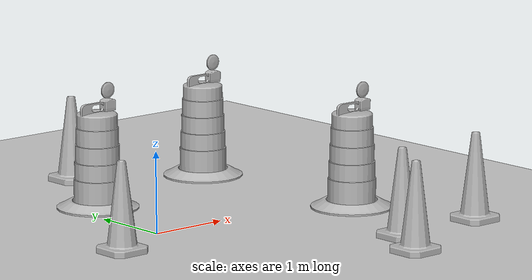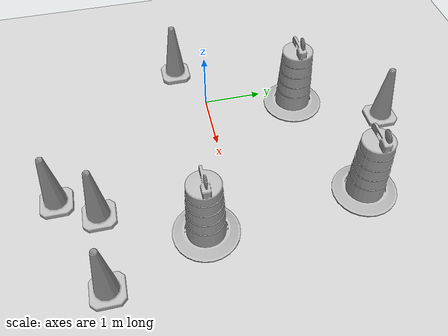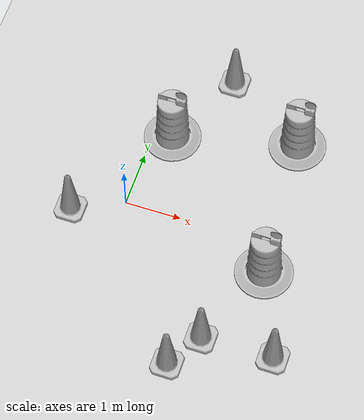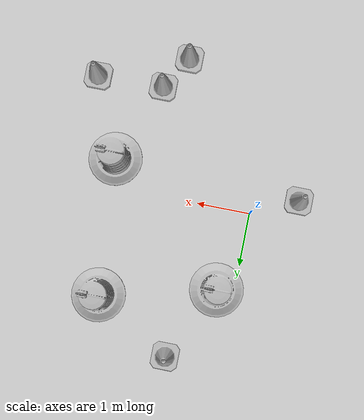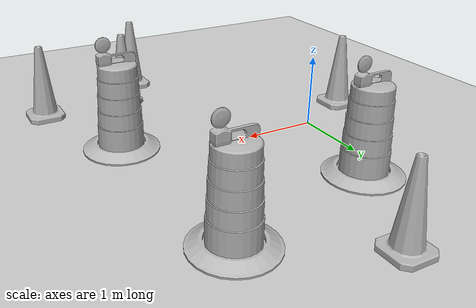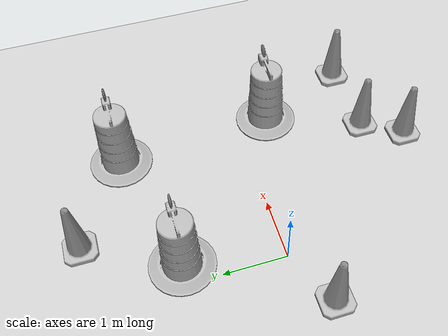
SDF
<sdf version="1.7">
 <world name="default">
  <model name="ground_plane">
   <static>1</static>
   <link name="link">
    <collision name="collision">
     <geometry><plane><normal>0 0 1</normal><size>100 100</size></plane></geometry>
     <surface><friction><ode><mu>100</mu><mu2>50</mu2></ode></friction></surface>
    </collision>
    <visual name="visual">
     <cast_shadows>0</cast_shadows>
     <geometry><plane><normal>0 0 1</normal><size>100 100</size></plane></geometry>
     <material>
      <script><uri>file://media/materials/scripts/gazebo.material</uri><name>Gazebo/Grey</name></script>
     </material>
    </visual>
   </link>
  </model>
  <gravity>0 0 -9.8</gravity>
  <magnetic_field>6e-06 2.3e-05 -4.2e-05</magnetic_field>
  <atmosphere type="adiabatic"/>
  <physics type="ode">
   <max_step_size>0.001</max_step_size>
   <real_time_factor>1</real_time_factor>
   <real_time_update_rate>1000</real_time_update_rate>
  </physics>
  <scene><ambient>0.4 0.4 0.4 1</ambient><background>0.7 0.7 0.7 1</background><shadows>1</shadows></scene>
  <audio><device>default</device></audio>
  <spherical_coordinates>
   <surface_model>EARTH_WGS84</surface_model>
   <latitude_deg>0</latitude_deg>
   <longitude_deg>0</longitude_deg>
   <elevation>0</elevation>
   <heading_deg>0</heading_deg>
  </spherical_coordinates>
  <model name="Construction Cone">
   <link name="link">
    <collision name="collision">
     <geometry>
      <mesh><scale>10 10 10</scale><uri>model://construction_cone/meshes/construction_cone.dae</uri></mesh>
     </geometry>
    </collision>
    <visual name="visual">
     <geometry>
      <mesh><scale>10 10 10</scale><uri>model://construction_cone/meshes/construction_cone.dae</uri></mesh>
     </geometry>
    </visual>
    <inertial>
     <inertia><ixx>1</ixx><ixy>0</ixy><ixz>0</ixz><iyy>1</iyy><iyz>0</iyz><izz>1</izz></inertia>
     <mass>1</mass>
    </inertial>
   </link>
   <pose>3.32021 -2.02369 -1e-05 0 -0 0</pose>
  </model>
  <model name="Construction Barrel">
   <link name="link">
    <inertial>
     <pose>0 0 0.4 0 -0 0</pose>
     <mass>500</mass>
     <inertia><ixx>51.2096</ixx><iyy>51.2096</iyy><izz>25</izz><ixy>0</ixy><ixz>0</ixz><iyz>0</iyz></inertia>
    </inertial>
    <collision name="collision">
     <geometry><mesh><uri>model://construction_barrel/meshes/construction_barrel.dae</uri></mesh></geometry>
    </collision>
    <visual name="visual">
     <geometry><mesh><uri>model://construction_barrel/meshes/construction_barrel.dae</uri></mesh></geometry>
    </visual>
   </link>
   <pose>2.68533 -0.527515 -5e-06 -1.2e-05 -3e-06 -1.6e-05</pose>
  </model>
  <model name="Construction Cone_0">
   <link name="link">
    <collision name="collision">
     <geometry>
      <mesh><scale>10 10 10</scale><uri>model://construction_cone/meshes/construction_cone.dae</uri></mesh>
     </geometry>
    </collision>
    <visual name="visual">
     <geometry>
      <mesh><scale>10 10 10</scale><uri>model://construction_cone/meshes/construction_cone.dae</uri></mesh>
     </geometry>
    </visual>
    <inertial>
     <inertia><ixx>1</ixx><ixy>0</ixy><ixz>0</ixz><iyy>1</iyy><iyz>0</iyz><izz>1</izz></inertia>
     <mass>1</mass>
    </inertial>
   </link>
   <pose>2.06526 -2.04973 -1e-05 -1e-06 0 0</pose>
  </model>
  <model name="Construction Cone_1">
   <link name="link">
    <collision name="collision">
     <geometry>
      <mesh><scale>10 10 10</scale><uri>model://construction_cone/meshes/construction_cone.dae</uri></mesh>
     </geometry>
    </collision>
    <visual name="visual">
     <geometry>
      <mesh><scale>10 10 10</scale><uri>model://construction_cone/meshes/construction_cone.dae</uri></mesh>
     </geometry>
    </visual>
    <inertial>
     <inertia><ixx>1</ixx><ixy>0</ixy><ixz>0</ixz><iyy>1</iyy><iyz>0</iyz><izz>1</izz></inertia>
     <mass>1</mass>
    </inertial>
   </link>
   <pose>1.6801 -2.67474 -0 0 -0 0</pose>
  </model>
  <model name="Construction Barrel_0">
   <link name="link">
    <inertial>
     <pose>0 0 0.4 0 -0 0</pose>
     <mass>500</mass>
     <inertia><ixx>51.2096</ixx><iyy>51.2096</iyy><izz>25</izz><ixy>0</ixy><ixz>0</ixz><iyz>0</iyz></inertia>
    </inertial>
    <collision name="collision">
     <geometry><mesh><uri>model://construction_barrel/meshes/construction_barrel.dae</uri></mesh></geometry>
    </collision>
    <visual name="visual">
     <geometry><mesh><uri>model://construction_barrel/meshes/construction_barrel.dae</uri></mesh></geometry>
    </visual>
   </link>
   <pose>0.334742 1.52517 -2e-06 7e-06 -4e-06 -9e-06</pose>
  </model>
  <model name="Construction Cone_2">
   <link name="link">
    <collision name="collision">
     <geometry>
      <mesh><scale>10 10 10</scale><uri>model://construction_cone/meshes/construction_cone.dae</uri></mesh>
     </geometry>
    </collision>
    <visual name="visual">
     <geometry>
      <mesh><scale>10 10 10</scale><uri>model://construction_cone/meshes/construction_cone.dae</uri></mesh>
     </geometry>
    </visual>
    <inertial>
     <inertia><ixx>1</ixx><ixy>0</ixy><ixz>0</ixz><iyy>1</iyy><iyz>0</iyz><izz>1</izz></inertia>
     <mass>1</mass>
    </inertial>
   </link>
   <pose>-0.868328 -0.413629 -0 0 -0 0</pose>
  </model>
  <model name="Construction Barrel_1">
   <link name="link">
    <inertial>
     <pose>0 0 0.4 0 -0 0</pose>
     <mass>500</mass>
     <inertia><ixx>51.2096</ixx><iyy>51.2096</iyy><izz>25</izz><ixy>0</ixy><ixz>0</ixz><iyz>0</iyz></inertia>
    </inertial>
    <collision name="collision">
     <geometry><mesh><uri>model://construction_barrel/meshes/construction_barrel.dae</uri></mesh></geometry>
    </collision>
    <visual name="visual">
     <geometry><mesh><uri>model://construction_barrel/meshes/construction_barrel.dae</uri></mesh></geometry>
    </visual>
   </link>
   <pose>2.48373 2.04475 -2e-06 8e-06 -4e-06 -7e-06</pose>
  </model>
  <model name="Construction Cone_3">
   <link name="link">
    <collision name="collision">
     <geometry>
      <mesh><scale>10 10 10</scale><uri>model://construction_cone/meshes/construction_cone.dae</uri></mesh>
     </geometry>
    </collision>
    <visual name="visual">
     <geometry>
      <mesh><scale>10 10 10</scale><uri>model://construction_cone/meshes/construction_cone.dae</uri></mesh>
     </geometry>
    </visual>
    <inertial>
     <inertia><ixx>1</ixx><ixy>0</ixy><ixz>0</ixz><iyy>1</iyy><iyz>0</iyz><izz>1</izz></inertia>
     <mass>1</mass>
    </inertial>
   </link>
   <pose>1.03637 2.923 -0 0 -1e-06 0</pose>
  </model>
 </world>
</sdf>
